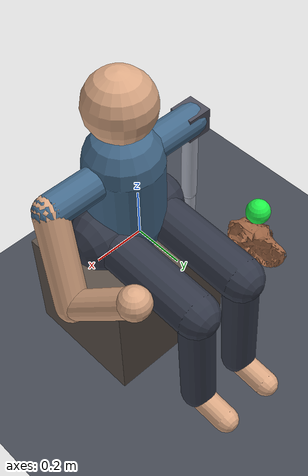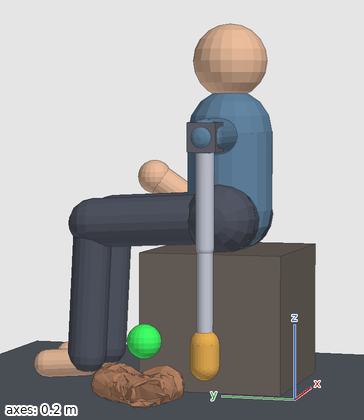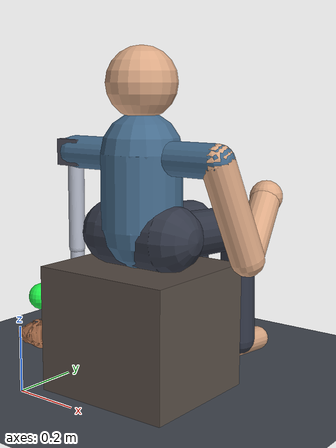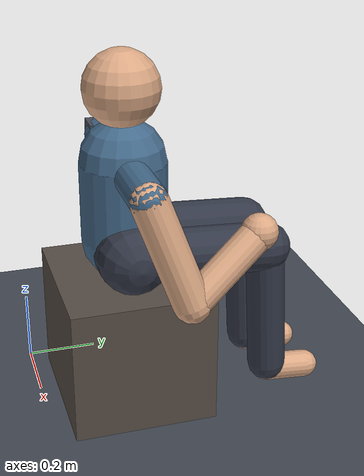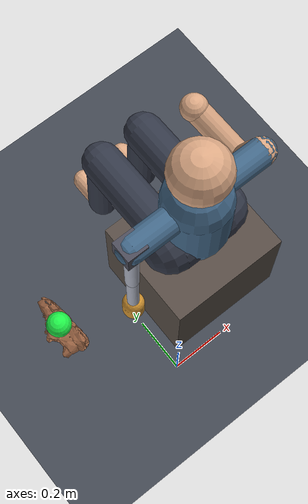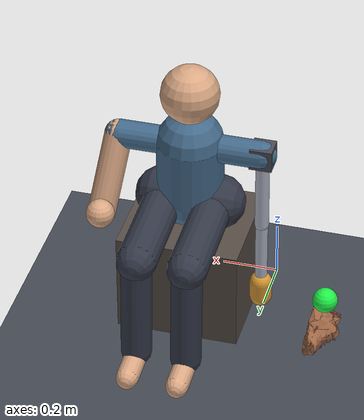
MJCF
<mujoco model="prosthesis_env">
  <compiler angle="radian" autolimits="true" meshdir="."/>
  <option gravity="0 0 -9.81" integrator="implicitfast" timestep="0.002"/>
  <visual>
    <global offwidth="1280" offheight="720"/>
    <headlight ambient="0.4 0.4 0.4" diffuse="0.6 0.6 0.6"/>
    <rgba haze="0.85 0.88 0.92 1"/>
  </visual>
  <asset>
    <texture name="skybox" type="skybox" builtin="gradient"
             rgb1="0.55 0.62 0.72" rgb2="0.10 0.12 0.16" width="512" height="512"/>
    <texture name="grid" type="2d" builtin="checker" rgb1="0.30 0.32 0.36"
             rgb2="0.22 0.24 0.28" width="512" height="512"/>
    <material name="grid" texture="grid" texrepeat="14 14" reflectance="0.05"/>
    <mesh name="upper_arm_mesh" file="arm_links/upper_arm.stl"/>
    <mesh name="forearm_mesh" file="arm_links/forearm.stl"/>
    <mesh name="gripper_mesh" file="arm_links/gripper.stl"/>
    <mesh name="shoe_mesh" file="arm_links/shoe.stl"/>
  </asset>
  <worldbody>
    <light pos="0 0 4" dir="0 0 -1" diffuse="0.9 0.9 0.9"/>
    <geom name="floor" type="plane" size="0 0 0.05" material="grid"/>
    <site name="target" pos="-0.25632 0.33941 0.17747" size="0.025"
          rgba="0.1 0.9 0.2 0.9" group="1"/>
    <body name="mount" pos="0 0.25 0.7">
      <geom name="mount_geom" type="box" size="0.04 0.04 0.04" rgba="0.3 0.3 0.35 1" density="1010.0"/>
      <body name="upper_arm" pos="0 0 0">
        <joint name="shoulder_flex" type="hinge" axis="0 1 0" range="-1.5708 2.0944" damping="0.5" armature="0.01"/>
        <joint name="shoulder_abduct" type="hinge" axis="1 0 0" range="-1.0472 1.5708" damping="0.5" armature="0.01"/>
        <geom name="upper_arm_geom" type="mesh" mesh="upper_arm_mesh" rgba="0.7 0.72 0.78 1" density="1010.0"/>
        <body name="forearm" pos="0 0 -0.3">
        <joint name="elbow" type="hinge" axis="0 1 0" range="0 2.2689" damping="0.5" armature="0.01"/>
        <geom name="forearm_geom" type="mesh" mesh="forearm_mesh" rgba="0.7 0.72 0.78 1" density="1010.0"/>
        <body name="gripper" pos="0 0 -0.26">
        <joint name="wrist" type="hinge" axis="1 0 0" range="-1.0472 1.0472" damping="0.5" armature="0.01"/>
        <geom name="gripper_geom" type="mesh" mesh="gripper_mesh" rgba="0.85 0.6 0.2 1" density="1010.0"/>
        <site name="ee" pos="0 0 -0.06" size="0.012" rgba="0.95 0.2 0.2 1" group="1"/>
      </body>
      </body>
      </body>
    </body>
    <body name="human" pos="0 0 0">
      <geom type="capsule" fromto="0 0.25 0.7 0.52 0.25 0.7" size="0.05" rgba="0.27 0.42 0.55 1" contype="0" conaffinity="0" group="2"/>
      <geom type="capsule" fromto="0.26 0.25 0.49 0.26 0.25 0.71" size="0.12" rgba="0.27 0.42 0.55 1" contype="0" conaffinity="0" group="2"/>
      <geom type="capsule" fromto="0.26 0.25 0.72 0.26 0.25 0.79" size="0.045" rgba="0.86 0.66 0.52 1" contype="0" conaffinity="0" group="2"/>
      <geom type="sphere" pos="0.26 0.25 0.91" size="0.105" rgba="0.86 0.66 0.52 1" contype="0" conaffinity="0" group="2"/>
      <geom type="capsule" fromto="0.52 0.25 0.7 0.56 0.35 0.42" size="0.05" rgba="0.86 0.66 0.52 1" contype="0" conaffinity="0" group="2"/>
      <geom type="capsule" fromto="0.56 0.35 0.42 0.5 0.55 0.57" size="0.045" rgba="0.86 0.66 0.52 1" contype="0" conaffinity="0" group="2"/>
      <geom type="sphere" pos="0.5 0.55 0.57" size="0.05" rgba="0.86 0.66 0.52 1" contype="0" conaffinity="0" group="2"/>
      <geom type="capsule" fromto="0.16 0.25 0.47 0.36 0.25 0.47" size="0.1" rgba="0.20 0.22 0.28 1" contype="0" conaffinity="0" group="2"/>
      <geom type="capsule" fromto="0.17 0.25 0.47 0.17 0.63 0.45" size="0.07" rgba="0.20 0.22 0.28 1" contype="0" conaffinity="0" group="2"/>
      <geom type="capsule" fromto="0.35 0.25 0.47 0.35 0.63 0.45" size="0.07" rgba="0.20 0.22 0.28 1" contype="0" conaffinity="0" group="2"/>
      <geom type="capsule" fromto="0.17 0.63 0.45 0.17 0.65 0.07" size="0.055" rgba="0.20 0.22 0.28 1" contype="0" conaffinity="0" group="2"/>
      <geom type="capsule" fromto="0.35 0.63 0.45 0.35 0.65 0.07" size="0.055" rgba="0.20 0.22 0.28 1" contype="0" conaffinity="0" group="2"/>
      <geom type="capsule" fromto="0.17 0.65 0.05 0.17 0.77 0.04" size="0.04" rgba="0.86 0.66 0.52 1" contype="0" conaffinity="0" group="2"/>
      <geom type="capsule" fromto="0.35 0.65 0.05 0.35 0.77 0.04" size="0.04" rgba="0.86 0.66 0.52 1" contype="0" conaffinity="0" group="2"/>
      <geom type="box" pos="0.26 0.25 0.19" size="0.22 0.2 0.19" rgba="0.34 0.30 0.27 1" contype="0" conaffinity="0" group="2"/>
    </body>

    <body name="obj_shoe" pos="-0.25041 0.36564 0.005" euler="0 0 3.1416">
      <geom type="mesh" mesh="shoe_mesh" rgba="0.62 0.4 0.27 1" contype="0" conaffinity="0" group="2"/>
    </body>

    <body name="target_marker" mocap="true" pos="-0.25632 0.33941 0.17747">
      <geom type="sphere" size="0.045" rgba="0.12 0.95 0.28 1" contype="0" conaffinity="0"/>
    </body>
  </worldbody>
  <contact>
    <exclude body1="mount" body2="upper_arm"/>
    <exclude body1="upper_arm" body2="forearm"/>
    <exclude body1="forearm" body2="gripper"/>
  </contact>
  <actuator>
    <position name="act_shoulder_flex" joint="shoulder_flex" kp="220" kv="18" ctrlrange="-1.5708 2.0944" forcerange="-80 80"/>
    <position name="act_shoulder_abduct" joint="shoulder_abduct" kp="220" kv="18" ctrlrange="-1.0472 1.5708" forcerange="-80 80"/>
    <position name="act_elbow" joint="elbow" kp="220" kv="18" ctrlrange="0 2.2689" forcerange="-80 80"/>
    <position name="act_wrist" joint="wrist" kp="220" kv="18" ctrlrange="-1.0472 1.0472" forcerange="-80 80"/>
  </actuator>
</mujoco>
